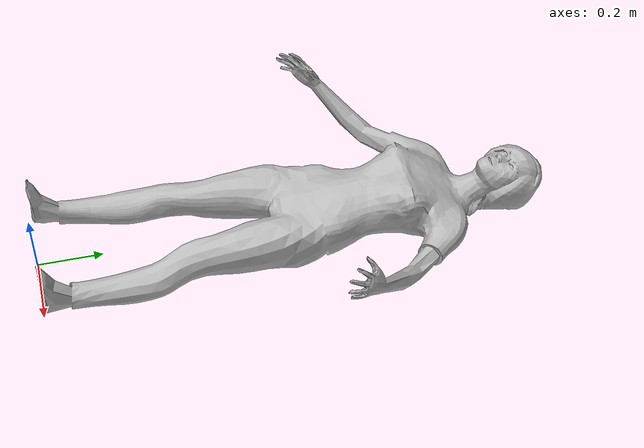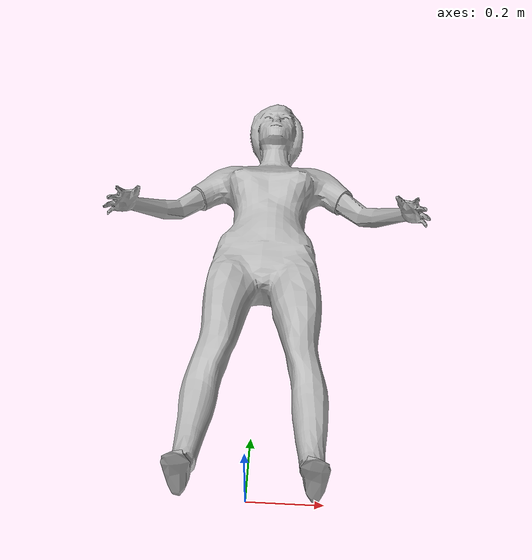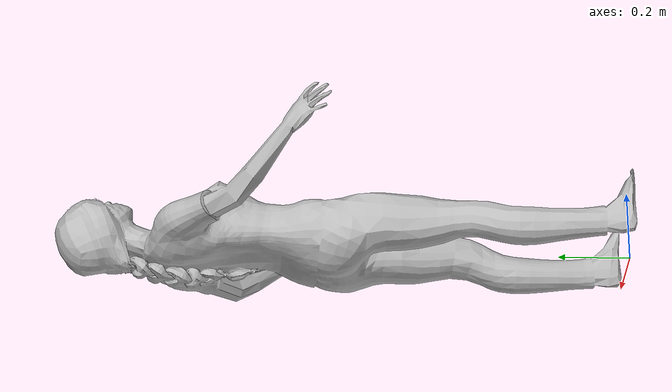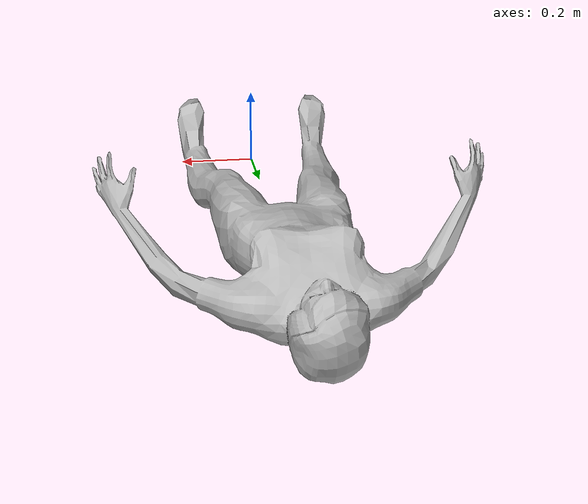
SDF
<?xml version="1.0" ?>
<sdf version='1.4'>
  <model name="clara">
      <static>0</static>
      <link name='link'>
        <inertial>
            <pose>0 0 -1.0 0 0 0</pose>
            <mass>80.0</mass>
            <inertia>
            <ixx>24.88</ixx>
            <ixy>0</ixy>
            <ixz>0</ixz>
            <iyy>25.73</iyy>
            <iyz>0</iyz>
            <izz>2.48</izz>
            </inertia>
        </inertial>

        <collision name="bottom">
            <pose>0 0 0.01 0 0 1.57</pose>
            <geometry>
            <box>
                <size>0.5 0.35 0.02</size>
            </box>
            </geometry>
        </collision>
        <collision name="person">
            <pose>0 0 0.02 0 0 1.57</pose>
            <geometry>
            <mesh>
              <uri>model://clara/meshes/clara.dae</uri>
            </mesh>
            </geometry>
        </collision>
        <visual name='visual'>
          <geometry>
            <mesh>
              <uri>model://clara/meshes/clara.dae</uri>
              <scale>1 1 1</scale>
            </mesh>
          </geometry>

        </visual>
        <velocity_decay>
          <linear>0.000000</linear>
          <angular>0.000000</angular>
        </velocity_decay>
        <self_collide>0</self_collide>
        <kinematic>0</kinematic>
        <gravity>1</gravity>
      </link>
  </model>
</sdf>
